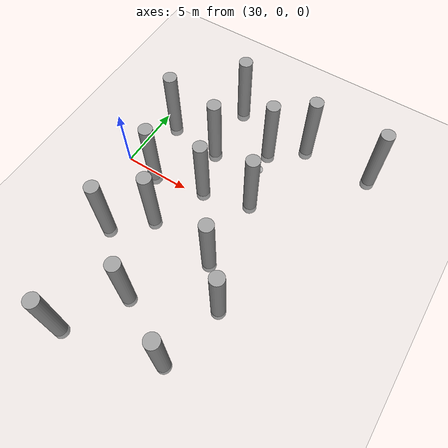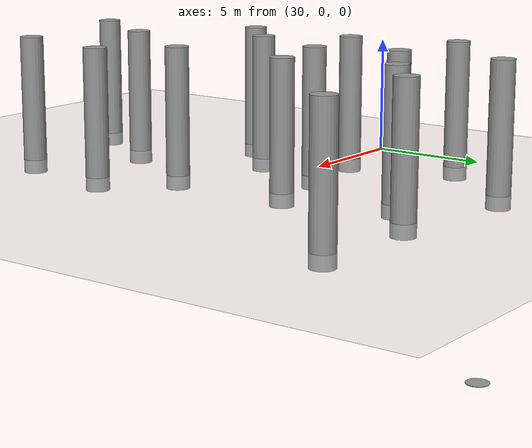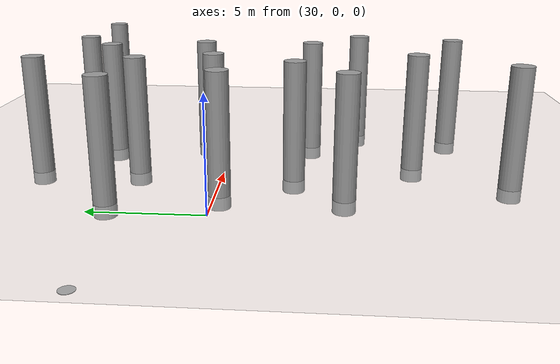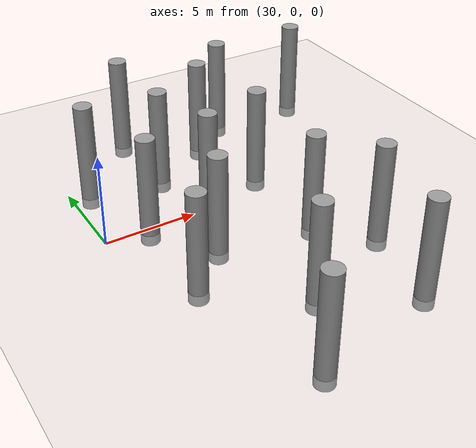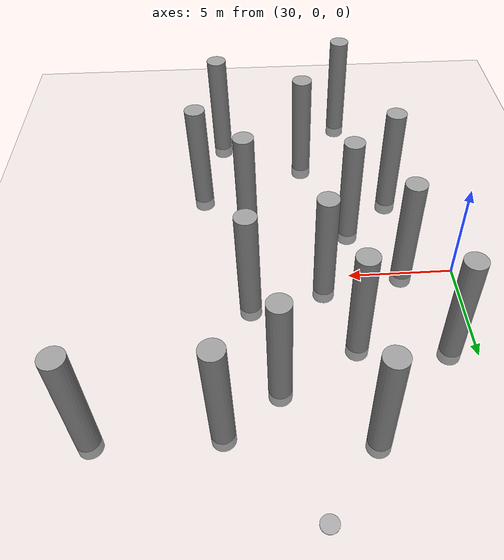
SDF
<sdf version="1.6">
 <world name="default">
  <model name="ground_plane">
   <static>1</static>
   <link name="link">
    <collision name="collision">
     <geometry><plane><normal>0 0 1</normal><size>200 200</size></plane></geometry>
     <surface><friction><ode><mu>100</mu><mu2>50</mu2></ode></friction></surface>
    </collision>
    <visual name="visual">
     <cast_shadows>0</cast_shadows>
     <geometry><plane><normal>0 0 1</normal><size>200 200</size></plane></geometry>
     <material>
      <script><uri>file://media/materials/scripts/gazebo.material</uri><name>Gazebo/Grey</name></script>
     </material>
    </visual>
    <gravity>0</gravity>
   </link>
  </model>
  <model name="unit_cylinder_0">
   <static>1</static>
   <pose>36.5123 8.86063 -7.43476 0 -0 0</pose>
   <link name="link">
    <inertial>
     <mass>1</mass>
     <inertia><ixx>0.145833</ixx><ixy>0</ixy><ixz>0</ixz><iyy>0.145833</iyy><iyz>0</iyz><izz>0.125</izz></inertia>
    </inertial>
    <collision name="collision">
     <geometry><cylinder><radius>0.5</radius><length>0.027471</length></cylinder></geometry>
     <surface><contact><collide_without_contact>1</collide_without_contact></contact></surface>
    </collision>
    <visual name="visual">
     <geometry><cylinder><radius>0.5</radius><length>0.027471</length></cylinder></geometry>
     <material>
      <script><name>Gazebo/Grey</name><uri>file://media/materials/scripts/gazebo.material</uri></script>
     </material>
    </visual>
    <gravity>0</gravity>
   </link>
  </model>
  <model name="unit_cylinder_0_clone_14_clone">
   <static>1</static>
   <pose>34.8945 8.63353 2.40172 0 -0 0.001073</pose>
   <link name="link">
    <inertial>
     <mass>1</mass>
     <inertia><ixx>0.145833</ixx><ixy>0</ixy><ixz>0</ixz><iyy>0.145833</iyy><iyz>0</iyz><izz>0.125</izz></inertia>
    </inertial>
    <collision name="collision">
     <geometry><cylinder><radius>0.5</radius><length>6.03342</length></cylinder></geometry>
     <surface><contact><collide_without_contact>1</collide_without_contact></contact></surface>
    </collision>
    <visual name="visual">
     <geometry><cylinder><radius>0.5</radius><length>6.03342</length></cylinder></geometry>
     <material>
      <script><name>Gazebo/Grey</name><uri>file://media/materials/scripts/gazebo.material</uri></script>
     </material>
    </visual>
    <gravity>0</gravity>
   </link>
  </model>
  <model name="unit_cylinder_0_clone_14_clone_0">
   <static>1</static>
   <pose>39.7254 1.47591 2.40172 0 -0 0.001073</pose>
   <link name="link">
    <inertial>
     <mass>1</mass>
     <inertia><ixx>0.145833</ixx><ixy>0</ixy><ixz>0</ixz><iyy>0.145833</iyy><iyz>0</iyz><izz>0.125</izz></inertia>
    </inertial>
    <collision name="collision">
     <geometry><cylinder><radius>0.5</radius><length>6.03342</length></cylinder></geometry>
     <surface><contact><collide_without_contact>1</collide_without_contact></contact></surface>
    </collision>
    <visual name="visual">
     <geometry><cylinder><radius>0.5</radius><length>6.03342</length></cylinder></geometry>
     <material>
      <script><name>Gazebo/Grey</name><uri>file://media/materials/scripts/gazebo.material</uri></script>
     </material>
    </visual>
    <gravity>0</gravity>
   </link>
  </model>
  <model name="unit_cylinder_0_clone_14_clone_1">
   <static>1</static>
   <pose>34.6294 -3.2579 2.40172 0 -0 0.001073</pose>
   <link name="link">
    <inertial>
     <mass>1</mass>
     <inertia><ixx>0.145833</ixx><ixy>0</ixy><ixz>0</ixz><iyy>0.145833</iyy><iyz>0</iyz><izz>0.125</izz></inertia>
    </inertial>
    <collision name="collision">
     <geometry><cylinder><radius>0.5</radius><length>6.03342</length></cylinder></geometry>
     <surface><contact><collide_without_contact>1</collide_without_contact></contact></surface>
    </collision>
    <visual name="visual">
     <geometry><cylinder><radius>0.5</radius><length>6.03342</length></cylinder></geometry>
     <material>
      <script><name>Gazebo/Grey</name><uri>file://media/materials/scripts/gazebo.material</uri></script>
     </material>
    </visual>
    <gravity>0</gravity>
   </link>
  </model>
  <model name="unit_cylinder_0_clone_14_clone_2">
   <static>1</static>
   <pose>35.1198 4.01966 2.40172 0 -0 0.001073</pose>
   <link name="link">
    <inertial>
     <mass>1</mass>
     <inertia><ixx>0.145833</ixx><ixy>0</ixy><ixz>0</ixz><iyy>0.145833</iyy><iyz>0</iyz><izz>0.125</izz></inertia>
    </inertial>
    <collision name="collision">
     <geometry><cylinder><radius>0.5</radius><length>6.03342</length></cylinder></geometry>
     <surface><contact><collide_without_contact>1</collide_without_contact></contact></surface>
    </collision>
    <visual name="visual">
     <geometry><cylinder><radius>0.5</radius><length>6.03342</length></cylinder></geometry>
     <material>
      <script><name>Gazebo/Grey</name><uri>file://media/materials/scripts/gazebo.material</uri></script>
     </material>
    </visual>
    <gravity>0</gravity>
   </link>
  </model>
  <model name="unit_cylinder_0_clone_14_clone_3">
   <static>1</static>
   <pose>40.9597 7.945 2.40172 0 -0 0.001073</pose>
   <link name="link">
    <inertial>
     <mass>1</mass>
     <inertia><ixx>0.145833</ixx><ixy>0</ixy><ixz>0</ixz><iyy>0.145833</iyy><iyz>0</iyz><izz>0.125</izz></inertia>
    </inertial>
    <collision name="collision">
     <geometry><cylinder><radius>0.5</radius><length>6.03342</length></cylinder></geometry>
     <surface><contact><collide_without_contact>1</collide_without_contact></contact></surface>
    </collision>
    <visual name="visual">
     <geometry><cylinder><radius>0.5</radius><length>6.03342</length></cylinder></geometry>
     <material>
      <script><name>Gazebo/Grey</name><uri>file://media/materials/scripts/gazebo.material</uri></script>
     </material>
    </visual>
    <gravity>0</gravity>
   </link>
  </model>
  <model name="unit_cylinder_0_clone_14_clone_5">
   <static>1</static>
   <pose>42.0529 -6.41265 2.40172 0 -0 0.001073</pose>
   <link name="link">
    <inertial>
     <mass>1</mass>
     <inertia><ixx>0.145833</ixx><ixy>0</ixy><ixz>0</ixz><iyy>0.145833</iyy><iyz>0</iyz><izz>0.125</izz></inertia>
    </inertial>
    <collision name="collision">
     <geometry><cylinder><radius>0.5</radius><length>6.03342</length></cylinder></geometry>
     <surface><contact><collide_without_contact>1</collide_without_contact></contact></surface>
    </collision>
    <visual name="visual">
     <geometry><cylinder><radius>0.5</radius><length>6.03342</length></cylinder></geometry>
     <material>
      <script><name>Gazebo/Grey</name><uri>file://media/materials/scripts/gazebo.material</uri></script>
     </material>
    </visual>
    <gravity>0</gravity>
   </link>
  </model>
  <model name="unit_cylinder_0_clone_14_clone_6">
   <static>1</static>
   <pose>36.6057 -8.82465 2.40172 0 -0 0.001073</pose>
   <link name="link">
    <inertial>
     <mass>1</mass>
     <inertia><ixx>0.145833</ixx><ixy>0</ixy><ixz>0</ixz><iyy>0.145833</iyy><iyz>0</iyz><izz>0.125</izz></inertia>
    </inertial>
    <collision name="collision">
     <geometry><cylinder><radius>0.5</radius><length>6.03342</length></cylinder></geometry>
     <surface><contact><collide_without_contact>1</collide_without_contact></contact></surface>
    </collision>
    <visual name="visual">
     <geometry><cylinder><radius>0.5</radius><length>6.03342</length></cylinder></geometry>
     <material>
      <script><name>Gazebo/Grey</name><uri>file://media/materials/scripts/gazebo.material</uri></script>
     </material>
    </visual>
    <gravity>0</gravity>
   </link>
  </model>
  <model name="unit_cylinder_0_clone_14_clone_8">
   <static>1</static>
   <pose>46.1829 7.9359 2.40172 0 -0 0.001073</pose>
   <link name="link">
    <inertial>
     <mass>1</mass>
     <inertia><ixx>0.145833</ixx><ixy>0</ixy><ixz>0</ixz><iyy>0.145833</iyy><iyz>0</iyz><izz>0.125</izz></inertia>
    </inertial>
    <collision name="collision">
     <geometry><cylinder><radius>0.5</radius><length>6.03342</length></cylinder></geometry>
     <surface><contact><collide_without_contact>1</collide_without_contact></contact></surface>
    </collision>
    <visual name="visual">
     <geometry><cylinder><radius>0.5</radius><length>6.03342</length></cylinder></geometry>
     <material>
      <script><name>Gazebo/Grey</name><uri>file://media/materials/scripts/gazebo.material</uri></script>
     </material>
    </visual>
    <gravity>0</gravity>
   </link>
  </model>
  <model name="unit_cylinder_0_clone_14_clone_11">
   <static>1</static>
   <pose>39.7289 -3.95269 2.40172 0 -0 0.001073</pose>
   <link name="link">
    <inertial>
     <mass>1</mass>
     <inertia><ixx>0.145833</ixx><ixy>0</ixy><ixz>0</ixz><iyy>0.145833</iyy><iyz>0</iyz><izz>0.125</izz></inertia>
    </inertial>
    <collision name="collision">
     <geometry><cylinder><radius>0.5</radius><length>6.03342</length></cylinder></geometry>
     <surface><contact><collide_without_contact>1</collide_without_contact></contact></surface>
    </collision>
    <visual name="visual">
     <geometry><cylinder><radius>0.5</radius><length>6.03342</length></cylinder></geometry>
     <material>
      <script><name>Gazebo/Grey</name><uri>file://media/materials/scripts/gazebo.material</uri></script>
     </material>
    </visual>
    <gravity>0</gravity>
   </link>
  </model>
  <model name="unit_cylinder_0_clone_14_clone_12">
   <static>1</static>
   <pose>34.1973 -12.8246 2.40172 0 -0 0.001073</pose>
   <link name="link">
    <inertial>
     <mass>1</mass>
     <inertia><ixx>0.145833</ixx><ixy>0</ixy><ixz>0</ixz><iyy>0.145833</iyy><iyz>0</iyz><izz>0.125</izz></inertia>
    </inertial>
    <collision name="collision">
     <geometry><cylinder><radius>0.5</radius><length>6.03342</length></cylinder></geometry>
     <surface><contact><collide_without_contact>1</collide_without_contact></contact></surface>
    </collision>
    <visual name="visual">
     <geometry><cylinder><radius>0.5</radius><length>6.03342</length></cylinder></geometry>
     <material>
      <script><name>Gazebo/Grey</name><uri>file://media/materials/scripts/gazebo.material</uri></script>
     </material>
    </visual>
    <gravity>0</gravity>
   </link>
  </model>
  <model name="unit_cylinder_0_clone_14_clone_16">
   <static>1</static>
   <pose>32.4082 -0.136858 2.40172 0 -0 0.001073</pose>
   <link name="link">
    <inertial>
     <mass>1</mass>
     <inertia><ixx>0.145833</ixx><ixy>0</ixy><ixz>0</ixz><iyy>0.145833</iyy><iyz>0</iyz><izz>0.125</izz></inertia>
    </inertial>
    <collision name="collision">
     <geometry><cylinder><radius>0.5</radius><length>6.03342</length></cylinder></geometry>
     <surface><contact><collide_without_contact>1</collide_without_contact></contact></surface>
    </collision>
    <visual name="visual">
     <geometry><cylinder><radius>0.5</radius><length>6.03342</length></cylinder></geometry>
     <material>
      <script><name>Gazebo/Grey</name><uri>file://media/materials/scripts/gazebo.material</uri></script>
     </material>
    </visual>
    <gravity>0</gravity>
   </link>
  </model>
  <model name="unit_cylinder_0_clone_14_clone_17">
   <static>1</static>
   <pose>41.0492 -11.1268 2.40172 0 -0 0.001073</pose>
   <link name="link">
    <inertial>
     <mass>1</mass>
     <inertia><ixx>0.145833</ixx><ixy>0</ixy><ixz>0</ixz><iyy>0.145833</iyy><iyz>0</iyz><izz>0.125</izz></inertia>
    </inertial>
    <collision name="collision">
     <geometry><cylinder><radius>0.5</radius><length>6.03342</length></cylinder></geometry>
     <surface><contact><collide_without_contact>1</collide_without_contact></contact></surface>
    </collision>
    <visual name="visual">
     <geometry><cylinder><radius>0.5</radius><length>6.03342</length></cylinder></geometry>
     <material>
      <script><name>Gazebo/Grey</name><uri>file://media/materials/scripts/gazebo.material</uri></script>
     </material>
    </visual>
    <gravity>0</gravity>
   </link>
  </model>
  <model name="unit_cylinder_0_clone_14_clone_9_clone_4">
   <static>1</static>
   <pose>31.106 4.49997 2.40172 0 -0 0.001073</pose>
   <link name="link">
    <inertial>
     <mass>1</mass>
     <inertia><ixx>0.145833</ixx><ixy>0</ixy><ixz>0</ixz><iyy>0.145833</iyy><iyz>0</iyz><izz>0.125</izz></inertia>
    </inertial>
    <collision name="collision">
     <geometry><cylinder><radius>0.5</radius><length>6.03342</length></cylinder></geometry>
     <surface><contact><collide_without_contact>1</collide_without_contact></contact></surface>
    </collision>
    <visual name="visual">
     <geometry><cylinder><radius>0.5</radius><length>6.03342</length></cylinder></geometry>
     <material>
      <script><name>Gazebo/Grey</name><uri>file://media/materials/scripts/gazebo.material</uri></script>
     </material>
    </visual>
    <gravity>0</gravity>
   </link>
  </model>
  <model name="unit_cylinder_0_clone_14_clone_9_clone_7">
   <static>1</static>
   <pose>32.2752 -5.48949 2.40172 0 -0 0.001073</pose>
   <link name="link">
    <inertial>
     <mass>1</mass>
     <inertia><ixx>0.145833</ixx><ixy>0</ixy><ixz>0</ixz><iyy>0.145833</iyy><iyz>0</iyz><izz>0.125</izz></inertia>
    </inertial>
    <collision name="collision">
     <geometry><cylinder><radius>0.5</radius><length>6.03342</length></cylinder></geometry>
     <surface><contact><collide_without_contact>1</collide_without_contact></contact></surface>
    </collision>
    <visual name="visual">
     <geometry><cylinder><radius>0.5</radius><length>6.03342</length></cylinder></geometry>
     <material>
      <script><name>Gazebo/Grey</name><uri>file://media/materials/scripts/gazebo.material</uri></script>
     </material>
    </visual>
    <gravity>0</gravity>
   </link>
  </model>
  <model name="unit_cylinder_0_clone_14_clone_9_clone_8">
   <static>1</static>
   <pose>36.2537 0.598528 2.40172 0 -0 0.001073</pose>
   <link name="link">
    <inertial>
     <mass>1</mass>
     <inertia><ixx>0.145833</ixx><ixy>0</ixy><ixz>0</ixz><iyy>0.145833</iyy><iyz>0</iyz><izz>0.125</izz></inertia>
    </inertial>
    <collision name="collision">
     <geometry><cylinder><radius>0.5</radius><length>6.03342</length></cylinder></geometry>
     <surface><contact><collide_without_contact>1</collide_without_contact></contact></surface>
    </collision>
    <visual name="visual">
     <geometry><cylinder><radius>0.5</radius><length>6.03342</length></cylinder></geometry>
     <material>
      <script><name>Gazebo/Grey</name><uri>file://media/materials/scripts/gazebo.material</uri></script>
     </material>
    </visual>
    <gravity>0</gravity>
   </link>
  </model>
  <model name="unit_cylinder_0_clone_14_clone_9_clone_9">
   <static>1</static>
   <pose>38.6147 6.08509 2.40172 0 -0 0.001073</pose>
   <link name="link">
    <inertial>
     <mass>1</mass>
     <inertia><ixx>0.145833</ixx><ixy>0</ixy><ixz>0</ixz><iyy>0.145833</iyy><iyz>0</iyz><izz>0.125</izz></inertia>
    </inertial>
    <collision name="collision">
     <geometry><cylinder><radius>0.5</radius><length>6.03342</length></cylinder></geometry>
     <surface><contact><collide_without_contact>1</collide_without_contact></contact></surface>
    </collision>
    <visual name="visual">
     <geometry><cylinder><radius>0.5</radius><length>6.03342</length></cylinder></geometry>
     <material>
      <script><name>Gazebo/Grey</name><uri>file://media/materials/scripts/gazebo.material</uri></script>
     </material>
    </visual>
    <gravity>0</gravity>
   </link>
  </model>
 </world>
</sdf>
